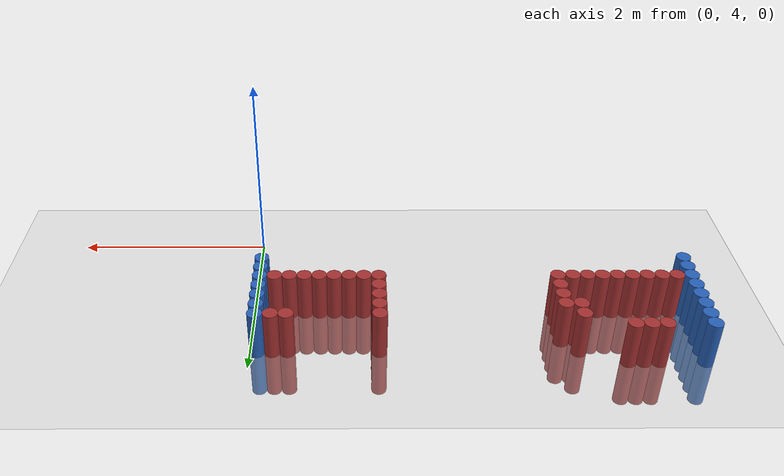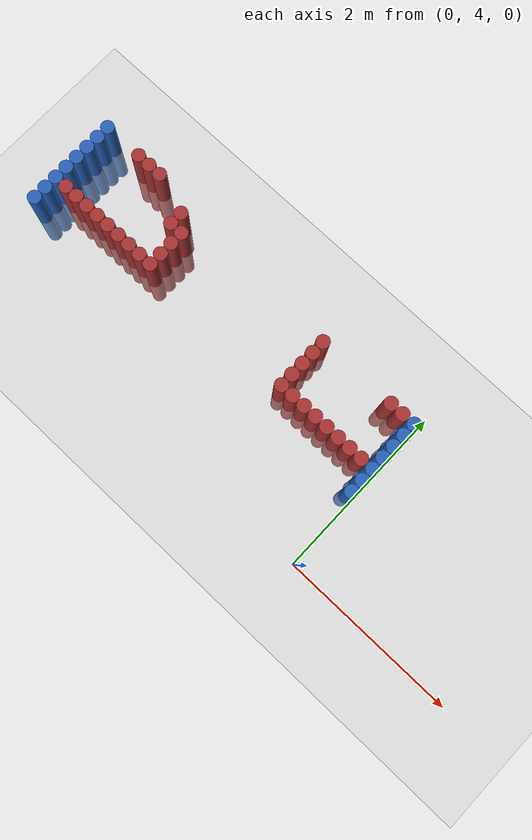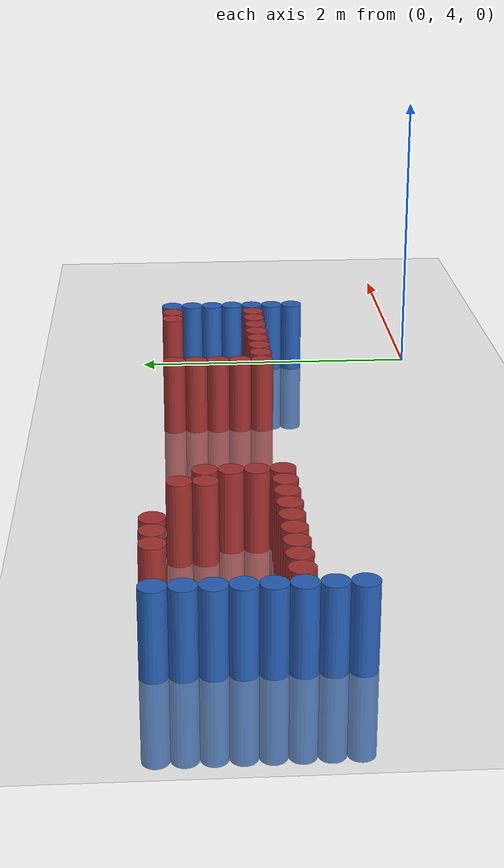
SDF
<sdf version="1.6">
 <world name="default">
  <model name="ground_plane">
   <static>1</static>
   <link name="link">
    <collision name="collision">
     <geometry><plane><normal>0 0 1</normal><size>100 100</size></plane></geometry>
     <surface><friction><ode><mu>100</mu><mu2>50</mu2></ode></friction></surface>
    </collision>
    <visual name="visual">
     <cast_shadows>0</cast_shadows>
     <geometry><plane><normal>0 0 1</normal><size>100 100</size></plane></geometry>
     <material>
      <script><uri>file://media/materials/scripts/gazebo.material</uri><name>Gazebo/Grey</name></script>
     </material>
    </visual>
   </link>
  </model>
  <model name="unit_cylinder_92">
   <static>1</static>
   <pose>-0.075000 4.875000 0.000000 0.000000 0.000000 0.000000</pose>
   <link name="link">
    <inertial>
     <mass>1</mass>
     <inertia><ixx>0.145833</ixx><ixy>0</ixy><ixz>0</ixz><iyy>0.145833</iyy><iyz>0</iyz><izz>0.125</izz></inertia>
    </inertial>
    <collision name="collision">
     <geometry><cylinder><radius>0.075000</radius><length>1</length></cylinder></geometry>
    </collision>
    <visual name="visual">
     <geometry><cylinder><radius>0.075000</radius><length>1</length></cylinder></geometry>
     <material>
      <ambient>0.152000 0.379000 0.720000 1</ambient>
      <diffuse>0.152000 0.379000 0.720000 1</diffuse>
     </material>
     <material>
      <script><name>Gazebo/Grey</name><uri>file://media/materials/scripts/gazebo.material</uri></script>
     </material>
    </visual>
   </link>
  </model>
  <model name="unit_cylinder_93">
   <static>1</static>
   <pose>-4.425000 4.875000 0.000000 0.000000 0.000000 0.000000</pose>
   <link name="link">
    <inertial>
     <mass>1</mass>
     <inertia><ixx>0.145833</ixx><ixy>0</ixy><ixz>0</ixz><iyy>0.145833</iyy><iyz>0</iyz><izz>0.125</izz></inertia>
    </inertial>
    <collision name="collision">
     <geometry><cylinder><radius>0.075000</radius><length>1</length></cylinder></geometry>
    </collision>
    <visual name="visual">
     <geometry><cylinder><radius>0.075000</radius><length>1</length></cylinder></geometry>
     <material>
      <ambient>0.152000 0.379000 0.720000 1</ambient>
      <diffuse>0.152000 0.379000 0.720000 1</diffuse>
     </material>
     <material>
      <script><name>Gazebo/Grey</name><uri>file://media/materials/scripts/gazebo.material</uri></script>
     </material>
    </visual>
   </link>
  </model>
  <model name="unit_cylinder_94">
   <static>1</static>
   <pose>-0.075000 5.025000 0.000000 0.000000 0.000000 0.000000</pose>
   <link name="link">
    <inertial>
     <mass>1</mass>
     <inertia><ixx>0.145833</ixx><ixy>0</ixy><ixz>0</ixz><iyy>0.145833</iyy><iyz>0</iyz><izz>0.125</izz></inertia>
    </inertial>
    <collision name="collision">
     <geometry><cylinder><radius>0.075000</radius><length>1</length></cylinder></geometry>
    </collision>
    <visual name="visual">
     <geometry><cylinder><radius>0.075000</radius><length>1</length></cylinder></geometry>
     <material>
      <ambient>0.152000 0.379000 0.720000 1</ambient>
      <diffuse>0.152000 0.379000 0.720000 1</diffuse>
     </material>
     <material>
      <script><name>Gazebo/Grey</name><uri>file://media/materials/scripts/gazebo.material</uri></script>
     </material>
    </visual>
   </link>
  </model>
  <model name="unit_cylinder_95">
   <static>1</static>
   <pose>-4.425000 5.025000 0.000000 0.000000 0.000000 0.000000</pose>
   <link name="link">
    <inertial>
     <mass>1</mass>
     <inertia><ixx>0.145833</ixx><ixy>0</ixy><ixz>0</ixz><iyy>0.145833</iyy><iyz>0</iyz><izz>0.125</izz></inertia>
    </inertial>
    <collision name="collision">
     <geometry><cylinder><radius>0.075000</radius><length>1</length></cylinder></geometry>
    </collision>
    <visual name="visual">
     <geometry><cylinder><radius>0.075000</radius><length>1</length></cylinder></geometry>
     <material>
      <ambient>0.152000 0.379000 0.720000 1</ambient>
      <diffuse>0.152000 0.379000 0.720000 1</diffuse>
     </material>
     <material>
      <script><name>Gazebo/Grey</name><uri>file://media/materials/scripts/gazebo.material</uri></script>
     </material>
    </visual>
   </link>
  </model>
  <model name="unit_cylinder_96">
   <static>1</static>
   <pose>-4.425000 5.175000 0.000000 0.000000 0.000000 0.000000</pose>
   <link name="link">
    <inertial>
     <mass>1</mass>
     <inertia><ixx>0.145833</ixx><ixy>0</ixy><ixz>0</ixz><iyy>0.145833</iyy><iyz>0</iyz><izz>0.125</izz></inertia>
    </inertial>
    <collision name="collision">
     <geometry><cylinder><radius>0.075000</radius><length>1</length></cylinder></geometry>
    </collision>
    <visual name="visual">
     <geometry><cylinder><radius>0.075000</radius><length>1</length></cylinder></geometry>
     <material>
      <ambient>0.152000 0.379000 0.720000 1</ambient>
      <diffuse>0.152000 0.379000 0.720000 1</diffuse>
     </material>
     <material>
      <script><name>Gazebo/Grey</name><uri>file://media/materials/scripts/gazebo.material</uri></script>
     </material>
    </visual>
   </link>
  </model>
  <model name="unit_cylinder_97">
   <static>1</static>
   <pose>-4.425000 5.325000 0.000000 0.000000 0.000000 0.000000</pose>
   <link name="link">
    <inertial>
     <mass>1</mass>
     <inertia><ixx>0.145833</ixx><ixy>0</ixy><ixz>0</ixz><iyy>0.145833</iyy><iyz>0</iyz><izz>0.125</izz></inertia>
    </inertial>
    <collision name="collision">
     <geometry><cylinder><radius>0.075000</radius><length>1</length></cylinder></geometry>
    </collision>
    <visual name="visual">
     <geometry><cylinder><radius>0.075000</radius><length>1</length></cylinder></geometry>
     <material>
      <ambient>0.152000 0.379000 0.720000 1</ambient>
      <diffuse>0.152000 0.379000 0.720000 1</diffuse>
     </material>
     <material>
      <script><name>Gazebo/Grey</name><uri>file://media/materials/scripts/gazebo.material</uri></script>
     </material>
    </visual>
   </link>
  </model>
  <model name="unit_cylinder_98">
   <static>1</static>
   <pose>-4.425000 5.475000 0.000000 0.000000 0.000000 0.000000</pose>
   <link name="link">
    <inertial>
     <mass>1</mass>
     <inertia><ixx>0.145833</ixx><ixy>0</ixy><ixz>0</ixz><iyy>0.145833</iyy><iyz>0</iyz><izz>0.125</izz></inertia>
    </inertial>
    <collision name="collision">
     <geometry><cylinder><radius>0.075000</radius><length>1</length></cylinder></geometry>
    </collision>
    <visual name="visual">
     <geometry><cylinder><radius>0.075000</radius><length>1</length></cylinder></geometry>
     <material>
      <ambient>0.152000 0.379000 0.720000 1</ambient>
      <diffuse>0.152000 0.379000 0.720000 1</diffuse>
     </material>
     <material>
      <script><name>Gazebo/Grey</name><uri>file://media/materials/scripts/gazebo.material</uri></script>
     </material>
    </visual>
   </link>
  </model>
  <model name="unit_cylinder_99">
   <static>1</static>
   <pose>-4.425000 5.625000 0.000000 0.000000 0.000000 0.000000</pose>
   <link name="link">
    <inertial>
     <mass>1</mass>
     <inertia><ixx>0.145833</ixx><ixy>0</ixy><ixz>0</ixz><iyy>0.145833</iyy><iyz>0</iyz><izz>0.125</izz></inertia>
    </inertial>
    <collision name="collision">
     <geometry><cylinder><radius>0.075000</radius><length>1</length></cylinder></geometry>
    </collision>
    <visual name="visual">
     <geometry><cylinder><radius>0.075000</radius><length>1</length></cylinder></geometry>
     <material>
      <ambient>0.152000 0.379000 0.720000 1</ambient>
      <diffuse>0.152000 0.379000 0.720000 1</diffuse>
     </material>
     <material>
      <script><name>Gazebo/Grey</name><uri>file://media/materials/scripts/gazebo.material</uri></script>
     </material>
    </visual>
   </link>
  </model>
  <model name="unit_cylinder_100">
   <static>1</static>
   <pose>-4.425000 5.775000 0.000000 0.000000 0.000000 0.000000</pose>
   <link name="link">
    <inertial>
     <mass>1</mass>
     <inertia><ixx>0.145833</ixx><ixy>0</ixy><ixz>0</ixz><iyy>0.145833</iyy><iyz>0</iyz><izz>0.125</izz></inertia>
    </inertial>
    <collision name="collision">
     <geometry><cylinder><radius>0.075000</radius><length>1</length></cylinder></geometry>
    </collision>
    <visual name="visual">
     <geometry><cylinder><radius>0.075000</radius><length>1</length></cylinder></geometry>
     <material>
      <ambient>0.152000 0.379000 0.720000 1</ambient>
      <diffuse>0.152000 0.379000 0.720000 1</diffuse>
     </material>
     <material>
      <script><name>Gazebo/Grey</name><uri>file://media/materials/scripts/gazebo.material</uri></script>
     </material>
    </visual>
   </link>
  </model>
  <model name="unit_cylinder_101">
   <static>1</static>
   <pose>-4.425000 5.925000 0.000000 0.000000 0.000000 0.000000</pose>
   <link name="link">
    <inertial>
     <mass>1</mass>
     <inertia><ixx>0.145833</ixx><ixy>0</ixy><ixz>0</ixz><iyy>0.145833</iyy><iyz>0</iyz><izz>0.125</izz></inertia>
    </inertial>
    <collision name="collision">
     <geometry><cylinder><radius>0.075000</radius><length>1</length></cylinder></geometry>
    </collision>
    <visual name="visual">
     <geometry><cylinder><radius>0.075000</radius><length>1</length></cylinder></geometry>
     <material>
      <ambient>0.152000 0.379000 0.720000 1</ambient>
      <diffuse>0.152000 0.379000 0.720000 1</diffuse>
     </material>
     <material>
      <script><name>Gazebo/Grey</name><uri>file://media/materials/scripts/gazebo.material</uri></script>
     </material>
    </visual>
   </link>
  </model>
  <model name="unit_cylinder_126">
   <static>1</static>
   <pose>-4.275000 5.175000 0.000000 0.000000 0.000000 0.000000</pose>
   <link name="link">
    <inertial>
     <mass>1</mass>
     <inertia><ixx>0.145833</ixx><ixy>0</ixy><ixz>0</ixz><iyy>0.145833</iyy><iyz>0</iyz><izz>0.125</izz></inertia>
    </inertial>
    <collision name="collision">
     <geometry><cylinder><radius>0.075000</radius><length>1</length></cylinder></geometry>
    </collision>
    <visual name="visual">
     <geometry><cylinder><radius>0.075000</radius><length>1</length></cylinder></geometry>
     <material>
      <ambient>0.648000 0.192000 0.192000 1</ambient>
      <diffuse>0.648000 0.192000 0.192000 1</diffuse>
     </material>
     <material>
      <script><name>Gazebo/Grey</name><uri>file://media/materials/scripts/gazebo.material</uri></script>
     </material>
    </visual>
   </link>
  </model>
  <model name="unit_cylinder_133">
   <static>1</static>
   <pose>-4.125000 5.175000 0.000000 0.000000 0.000000 0.000000</pose>
   <link name="link">
    <inertial>
     <mass>1</mass>
     <inertia><ixx>0.145833</ixx><ixy>0</ixy><ixz>0</ixz><iyy>0.145833</iyy><iyz>0</iyz><izz>0.125</izz></inertia>
    </inertial>
    <collision name="collision">
     <geometry><cylinder><radius>0.075000</radius><length>1</length></cylinder></geometry>
    </collision>
    <visual name="visual">
     <geometry><cylinder><radius>0.075000</radius><length>1</length></cylinder></geometry>
     <material>
      <ambient>0.648000 0.192000 0.192000 1</ambient>
      <diffuse>0.648000 0.192000 0.192000 1</diffuse>
     </material>
     <material>
      <script><name>Gazebo/Grey</name><uri>file://media/materials/scripts/gazebo.material</uri></script>
     </material>
    </visual>
   </link>
  </model>
  <model name="unit_cylinder_136">
   <static>1</static>
   <pose>-3.975000 5.175000 0.000000 0.000000 0.000000 0.000000</pose>
   <link name="link">
    <inertial>
     <mass>1</mass>
     <inertia><ixx>0.145833</ixx><ixy>0</ixy><ixz>0</ixz><iyy>0.145833</iyy><iyz>0</iyz><izz>0.125</izz></inertia>
    </inertial>
    <collision name="collision">
     <geometry><cylinder><radius>0.075000</radius><length>1</length></cylinder></geometry>
    </collision>
    <visual name="visual">
     <geometry><cylinder><radius>0.075000</radius><length>1</length></cylinder></geometry>
     <material>
      <ambient>0.648000 0.192000 0.192000 1</ambient>
      <diffuse>0.648000 0.192000 0.192000 1</diffuse>
     </material>
     <material>
      <script><name>Gazebo/Grey</name><uri>file://media/materials/scripts/gazebo.material</uri></script>
     </material>
    </visual>
   </link>
  </model>
  <model name="unit_cylinder_137">
   <static>1</static>
   <pose>-3.975000 5.925000 0.000000 0.000000 0.000000 0.000000</pose>
   <link name="link">
    <inertial>
     <mass>1</mass>
     <inertia><ixx>0.145833</ixx><ixy>0</ixy><ixz>0</ixz><iyy>0.145833</iyy><iyz>0</iyz><izz>0.125</izz></inertia>
    </inertial>
    <collision name="collision">
     <geometry><cylinder><radius>0.075000</radius><length>1</length></cylinder></geometry>
    </collision>
    <visual name="visual">
     <geometry><cylinder><radius>0.075000</radius><length>1</length></cylinder></geometry>
     <material>
      <ambient>0.648000 0.192000 0.192000 1</ambient>
      <diffuse>0.648000 0.192000 0.192000 1</diffuse>
     </material>
     <material>
      <script><name>Gazebo/Grey</name><uri>file://media/materials/scripts/gazebo.material</uri></script>
     </material>
    </visual>
   </link>
  </model>
  <model name="unit_cylinder_140">
   <static>1</static>
   <pose>-3.825000 5.175000 0.000000 0.000000 0.000000 0.000000</pose>
   <link name="link">
    <inertial>
     <mass>1</mass>
     <inertia><ixx>0.145833</ixx><ixy>0</ixy><ixz>0</ixz><iyy>0.145833</iyy><iyz>0</iyz><izz>0.125</izz></inertia>
    </inertial>
    <collision name="collision">
     <geometry><cylinder><radius>0.075000</radius><length>1</length></cylinder></geometry>
    </collision>
    <visual name="visual">
     <geometry><cylinder><radius>0.075000</radius><length>1</length></cylinder></geometry>
     <material>
      <ambient>0.648000 0.192000 0.192000 1</ambient>
      <diffuse>0.648000 0.192000 0.192000 1</diffuse>
     </material>
     <material>
      <script><name>Gazebo/Grey</name><uri>file://media/materials/scripts/gazebo.material</uri></script>
     </material>
    </visual>
   </link>
  </model>
  <model name="unit_cylinder_141">
   <static>1</static>
   <pose>-3.825000 5.925000 0.000000 0.000000 0.000000 0.000000</pose>
   <link name="link">
    <inertial>
     <mass>1</mass>
     <inertia><ixx>0.145833</ixx><ixy>0</ixy><ixz>0</ixz><iyy>0.145833</iyy><iyz>0</iyz><izz>0.125</izz></inertia>
    </inertial>
    <collision name="collision">
     <geometry><cylinder><radius>0.075000</radius><length>1</length></cylinder></geometry>
    </collision>
    <visual name="visual">
     <geometry><cylinder><radius>0.075000</radius><length>1</length></cylinder></geometry>
     <material>
      <ambient>0.648000 0.192000 0.192000 1</ambient>
      <diffuse>0.648000 0.192000 0.192000 1</diffuse>
     </material>
     <material>
      <script><name>Gazebo/Grey</name><uri>file://media/materials/scripts/gazebo.material</uri></script>
     </material>
    </visual>
   </link>
  </model>
  <model name="unit_cylinder_146">
   <static>1</static>
   <pose>-3.675000 5.175000 0.000000 0.000000 0.000000 0.000000</pose>
   <link name="link">
    <inertial>
     <mass>1</mass>
     <inertia><ixx>0.145833</ixx><ixy>0</ixy><ixz>0</ixz><iyy>0.145833</iyy><iyz>0</iyz><izz>0.125</izz></inertia>
    </inertial>
    <collision name="collision">
     <geometry><cylinder><radius>0.075000</radius><length>1</length></cylinder></geometry>
    </collision>
    <visual name="visual">
     <geometry><cylinder><radius>0.075000</radius><length>1</length></cylinder></geometry>
     <material>
      <ambient>0.648000 0.192000 0.192000 1</ambient>
      <diffuse>0.648000 0.192000 0.192000 1</diffuse>
     </material>
     <material>
      <script><name>Gazebo/Grey</name><uri>file://media/materials/scripts/gazebo.material</uri></script>
     </material>
    </visual>
   </link>
  </model>
  <model name="unit_cylinder_147">
   <static>1</static>
   <pose>-3.675000 5.925000 0.000000 0.000000 0.000000 0.000000</pose>
   <link name="link">
    <inertial>
     <mass>1</mass>
     <inertia><ixx>0.145833</ixx><ixy>0</ixy><ixz>0</ixz><iyy>0.145833</iyy><iyz>0</iyz><izz>0.125</izz></inertia>
    </inertial>
    <collision name="collision">
     <geometry><cylinder><radius>0.075000</radius><length>1</length></cylinder></geometry>
    </collision>
    <visual name="visual">
     <geometry><cylinder><radius>0.075000</radius><length>1</length></cylinder></geometry>
     <material>
      <ambient>0.648000 0.192000 0.192000 1</ambient>
      <diffuse>0.648000 0.192000 0.192000 1</diffuse>
     </material>
     <material>
      <script><name>Gazebo/Grey</name><uri>file://media/materials/scripts/gazebo.material</uri></script>
     </material>
    </visual>
   </link>
  </model>
  <model name="unit_cylinder_150">
   <static>1</static>
   <pose>-3.525000 5.175000 0.000000 0.000000 0.000000 0.000000</pose>
   <link name="link">
    <inertial>
     <mass>1</mass>
     <inertia><ixx>0.145833</ixx><ixy>0</ixy><ixz>0</ixz><iyy>0.145833</iyy><iyz>0</iyz><izz>0.125</izz></inertia>
    </inertial>
    <collision name="collision">
     <geometry><cylinder><radius>0.075000</radius><length>1</length></cylinder></geometry>
    </collision>
    <visual name="visual">
     <geometry><cylinder><radius>0.075000</radius><length>1</length></cylinder></geometry>
     <material>
      <ambient>0.648000 0.192000 0.192000 1</ambient>
      <diffuse>0.648000 0.192000 0.192000 1</diffuse>
     </material>
     <material>
      <script><name>Gazebo/Grey</name><uri>file://media/materials/scripts/gazebo.material</uri></script>
     </material>
    </visual>
   </link>
  </model>
  <model name="unit_cylinder_157">
   <static>1</static>
   <pose>-3.375000 5.175000 0.000000 0.000000 0.000000 0.000000</pose>
   <link name="link">
    <inertial>
     <mass>1</mass>
     <inertia><ixx>0.145833</ixx><ixy>0</ixy><ixz>0</ixz><iyy>0.145833</iyy><iyz>0</iyz><izz>0.125</izz></inertia>
    </inertial>
    <collision name="collision">
     <geometry><cylinder><radius>0.075000</radius><length>1</length></cylinder></geometry>
    </collision>
    <visual name="visual">
     <geometry><cylinder><radius>0.075000</radius><length>1</length></cylinder></geometry>
     <material>
      <ambient>0.648000 0.192000 0.192000 1</ambient>
      <diffuse>0.648000 0.192000 0.192000 1</diffuse>
     </material>
     <material>
      <script><name>Gazebo/Grey</name><uri>file://media/materials/scripts/gazebo.material</uri></script>
     </material>
    </visual>
   </link>
  </model>
  <model name="unit_cylinder_164">
   <static>1</static>
   <pose>-3.225000 5.175000 0.000000 0.000000 0.000000 0.000000</pose>
   <link name="link">
    <inertial>
     <mass>1</mass>
     <inertia><ixx>0.145833</ixx><ixy>0</ixy><ixz>0</ixz><iyy>0.145833</iyy><iyz>0</iyz><izz>0.125</izz></inertia>
    </inertial>
    <collision name="collision">
     <geometry><cylinder><radius>0.075000</radius><length>1</length></cylinder></geometry>
    </collision>
    <visual name="visual">
     <geometry><cylinder><radius>0.075000</radius><length>1</length></cylinder></geometry>
     <material>
      <ambient>0.648000 0.192000 0.192000 1</ambient>
      <diffuse>0.648000 0.192000 0.192000 1</diffuse>
     </material>
     <material>
      <script><name>Gazebo/Grey</name><uri>file://media/materials/scripts/gazebo.material</uri></script>
     </material>
    </visual>
   </link>
  </model>
  <model name="unit_cylinder_165">
   <static>1</static>
   <pose>-3.225000 5.625000 0.000000 0.000000 0.000000 0.000000</pose>
   <link name="link">
    <inertial>
     <mass>1</mass>
     <inertia><ixx>0.145833</ixx><ixy>0</ixy><ixz>0</ixz><iyy>0.145833</iyy><iyz>0</iyz><izz>0.125</izz></inertia>
    </inertial>
    <collision name="collision">
     <geometry><cylinder><radius>0.075000</radius><length>1</length></cylinder></geometry>
    </collision>
    <visual name="visual">
     <geometry><cylinder><radius>0.075000</radius><length>1</length></cylinder></geometry>
     <material>
      <ambient>0.648000 0.192000 0.192000 1</ambient>
      <diffuse>0.648000 0.192000 0.192000 1</diffuse>
     </material>
     <material>
      <script><name>Gazebo/Grey</name><uri>file://media/materials/scripts/gazebo.material</uri></script>
     </material>
    </visual>
   </link>
  </model>
  <model name="unit_cylinder_166">
   <static>1</static>
   <pose>-3.225000 5.775000 0.000000 0.000000 0.000000 0.000000</pose>
   <link name="link">
    <inertial>
     <mass>1</mass>
     <inertia><ixx>0.145833</ixx><ixy>0</ixy><ixz>0</ixz><iyy>0.145833</iyy><iyz>0</iyz><izz>0.125</izz></inertia>
    </inertial>
    <collision name="collision">
     <geometry><cylinder><radius>0.075000</radius><length>1</length></cylinder></geometry>
    </collision>
    <visual name="visual">
     <geometry><cylinder><radius>0.075000</radius><length>1</length></cylinder></geometry>
     <material>
      <ambient>0.648000 0.192000 0.192000 1</ambient>
      <diffuse>0.648000 0.192000 0.192000 1</diffuse>
     </material>
     <material>
      <script><name>Gazebo/Grey</name><uri>file://media/materials/scripts/gazebo.material</uri></script>
     </material>
    </visual>
   </link>
  </model>
  <model name="unit_cylinder_169">
   <static>1</static>
   <pose>-3.075000 5.175000 0.000000 0.000000 0.000000 0.000000</pose>
   <link name="link">
    <inertial>
     <mass>1</mass>
     <inertia><ixx>0.145833</ixx><ixy>0</ixy><ixz>0</ixz><iyy>0.145833</iyy><iyz>0</iyz><izz>0.125</izz></inertia>
    </inertial>
    <collision name="collision">
     <geometry><cylinder><radius>0.075000</radius><length>1</length></cylinder></geometry>
    </collision>
    <visual name="visual">
     <geometry><cylinder><radius>0.075000</radius><length>1</length></cylinder></geometry>
     <material>
      <ambient>0.648000 0.192000 0.192000 1</ambient>
      <diffuse>0.648000 0.192000 0.192000 1</diffuse>
     </material>
     <material>
      <script><name>Gazebo/Grey</name><uri>file://media/materials/scripts/gazebo.material</uri></script>
     </material>
    </visual>
   </link>
  </model>
  <model name="unit_cylinder_170">
   <static>1</static>
   <pose>-3.075000 5.325000 0.000000 0.000000 0.000000 0.000000</pose>
   <link name="link">
    <inertial>
     <mass>1</mass>
     <inertia><ixx>0.145833</ixx><ixy>0</ixy><ixz>0</ixz><iyy>0.145833</iyy><iyz>0</iyz><izz>0.125</izz></inertia>
    </inertial>
    <collision name="collision">
     <geometry><cylinder><radius>0.075000</radius><length>1</length></cylinder></geometry>
    </collision>
    <visual name="visual">
     <geometry><cylinder><radius>0.075000</radius><length>1</length></cylinder></geometry>
     <material>
      <ambient>0.648000 0.192000 0.192000 1</ambient>
      <diffuse>0.648000 0.192000 0.192000 1</diffuse>
     </material>
     <material>
      <script><name>Gazebo/Grey</name><uri>file://media/materials/scripts/gazebo.material</uri></script>
     </material>
    </visual>
   </link>
  </model>
  <model name="unit_cylinder_171">
   <static>1</static>
   <pose>-3.075000 5.475000 0.000000 0.000000 0.000000 0.000000</pose>
   <link name="link">
    <inertial>
     <mass>1</mass>
     <inertia><ixx>0.145833</ixx><ixy>0</ixy><ixz>0</ixz><iyy>0.145833</iyy><iyz>0</iyz><izz>0.125</izz></inertia>
    </inertial>
    <collision name="collision">
     <geometry><cylinder><radius>0.075000</radius><length>1</length></cylinder></geometry>
    </collision>
    <visual name="visual">
     <geometry><cylinder><radius>0.075000</radius><length>1</length></cylinder></geometry>
     <material>
      <ambient>0.648000 0.192000 0.192000 1</ambient>
      <diffuse>0.648000 0.192000 0.192000 1</diffuse>
     </material>
     <material>
      <script><name>Gazebo/Grey</name><uri>file://media/materials/scripts/gazebo.material</uri></script>
     </material>
    </visual>
   </link>
  </model>
  <model name="unit_cylinder_172">
   <static>1</static>
   <pose>-3.075000 5.625000 0.000000 0.000000 0.000000 0.000000</pose>
   <link name="link">
    <inertial>
     <mass>1</mass>
     <inertia><ixx>0.145833</ixx><ixy>0</ixy><ixz>0</ixz><iyy>0.145833</iyy><iyz>0</iyz><izz>0.125</izz></inertia>
    </inertial>
    <collision name="collision">
     <geometry><cylinder><radius>0.075000</radius><length>1</length></cylinder></geometry>
    </collision>
    <visual name="visual">
     <geometry><cylinder><radius>0.075000</radius><length>1</length></cylinder></geometry>
     <material>
      <ambient>0.648000 0.192000 0.192000 1</ambient>
      <diffuse>0.648000 0.192000 0.192000 1</diffuse>
     </material>
     <material>
      <script><name>Gazebo/Grey</name><uri>file://media/materials/scripts/gazebo.material</uri></script>
     </material>
    </visual>
   </link>
  </model>
  <model name="unit_cylinder_207">
   <static>1</static>
   <pose>-1.275000 5.175000 0.000000 0.000000 0.000000 0.000000</pose>
   <link name="link">
    <inertial>
     <mass>1</mass>
     <inertia><ixx>0.145833</ixx><ixy>0</ixy><ixz>0</ixz><iyy>0.145833</iyy><iyz>0</iyz><izz>0.125</izz></inertia>
    </inertial>
    <collision name="collision">
     <geometry><cylinder><radius>0.075000</radius><length>1</length></cylinder></geometry>
    </collision>
    <visual name="visual">
     <geometry><cylinder><radius>0.075000</radius><length>1</length></cylinder></geometry>
     <material>
      <ambient>0.648000 0.192000 0.192000 1</ambient>
      <diffuse>0.648000 0.192000 0.192000 1</diffuse>
     </material>
     <material>
      <script><name>Gazebo/Grey</name><uri>file://media/materials/scripts/gazebo.material</uri></script>
     </material>
    </visual>
   </link>
  </model>
  <model name="unit_cylinder_208">
   <static>1</static>
   <pose>-1.275000 5.325000 0.000000 0.000000 0.000000 0.000000</pose>
   <link name="link">
    <inertial>
     <mass>1</mass>
     <inertia><ixx>0.145833</ixx><ixy>0</ixy><ixz>0</ixz><iyy>0.145833</iyy><iyz>0</iyz><izz>0.125</izz></inertia>
    </inertial>
    <collision name="collision">
     <geometry><cylinder><radius>0.075000</radius><length>1</length></cylinder></geometry>
    </collision>
    <visual name="visual">
     <geometry><cylinder><radius>0.075000</radius><length>1</length></cylinder></geometry>
     <material>
      <ambient>0.648000 0.192000 0.192000 1</ambient>
      <diffuse>0.648000 0.192000 0.192000 1</diffuse>
     </material>
     <material>
      <script><name>Gazebo/Grey</name><uri>file://media/materials/scripts/gazebo.material</uri></script>
     </material>
    </visual>
   </link>
  </model>
  <model name="unit_cylinder_209">
   <static>1</static>
   <pose>-1.275000 5.475000 0.000000 0.000000 0.000000 0.000000</pose>
   <link name="link">
    <inertial>
     <mass>1</mass>
     <inertia><ixx>0.145833</ixx><ixy>0</ixy><ixz>0</ixz><iyy>0.145833</iyy><iyz>0</iyz><izz>0.125</izz></inertia>
    </inertial>
    <collision name="collision">
     <geometry><cylinder><radius>0.075000</radius><length>1</length></cylinder></geometry>
    </collision>
    <visual name="visual">
     <geometry><cylinder><radius>0.075000</radius><length>1</length></cylinder></geometry>
     <material>
      <ambient>0.648000 0.192000 0.192000 1</ambient>
      <diffuse>0.648000 0.192000 0.192000 1</diffuse>
     </material>
     <material>
      <script><name>Gazebo/Grey</name><uri>file://media/materials/scripts/gazebo.material</uri></script>
     </material>
    </visual>
   </link>
  </model>
  <model name="unit_cylinder_210">
   <static>1</static>
   <pose>-1.275000 5.625000 0.000000 0.000000 0.000000 0.000000</pose>
   <link name="link">
    <inertial>
     <mass>1</mass>
     <inertia><ixx>0.145833</ixx><ixy>0</ixy><ixz>0</ixz><iyy>0.145833</iyy><iyz>0</iyz><izz>0.125</izz></inertia>
    </inertial>
    <collision name="collision">
     <geometry><cylinder><radius>0.075000</radius><length>1</length></cylinder></geometry>
    </collision>
    <visual name="visual">
     <geometry><cylinder><radius>0.075000</radius><length>1</length></cylinder></geometry>
     <material>
      <ambient>0.648000 0.192000 0.192000 1</ambient>
      <diffuse>0.648000 0.192000 0.192000 1</diffuse>
     </material>
     <material>
      <script><name>Gazebo/Grey</name><uri>file://media/materials/scripts/gazebo.material</uri></script>
     </material>
    </visual>
   </link>
  </model>
  <model name="unit_cylinder_211">
   <static>1</static>
   <pose>-1.275000 5.775000 0.000000 0.000000 0.000000 0.000000</pose>
   <link name="link">
    <inertial>
     <mass>1</mass>
     <inertia><ixx>0.145833</ixx><ixy>0</ixy><ixz>0</ixz><iyy>0.145833</iyy><iyz>0</iyz><izz>0.125</izz></inertia>
    </inertial>
    <collision name="collision">
     <geometry><cylinder><radius>0.075000</radius><length>1</length></cylinder></geometry>
    </collision>
    <visual name="visual">
     <geometry><cylinder><radius>0.075000</radius><length>1</length></cylinder></geometry>
     <material>
      <ambient>0.648000 0.192000 0.192000 1</ambient>
      <diffuse>0.648000 0.192000 0.192000 1</diffuse>
     </material>
     <material>
      <script><name>Gazebo/Grey</name><uri>file://media/materials/scripts/gazebo.material</uri></script>
     </material>
    </visual>
   </link>
  </model>
  <model name="unit_cylinder_216">
   <static>1</static>
   <pose>-1.125000 5.175000 0.000000 0.000000 0.000000 0.000000</pose>
   <link name="link">
    <inertial>
     <mass>1</mass>
     <inertia><ixx>0.145833</ixx><ixy>0</ixy><ixz>0</ixz><iyy>0.145833</iyy><iyz>0</iyz><izz>0.125</izz></inertia>
    </inertial>
    <collision name="collision">
     <geometry><cylinder><radius>0.075000</radius><length>1</length></cylinder></geometry>
    </collision>
    <visual name="visual">
     <geometry><cylinder><radius>0.075000</radius><length>1</length></cylinder></geometry>
     <material>
      <ambient>0.648000 0.192000 0.192000 1</ambient>
      <diffuse>0.648000 0.192000 0.192000 1</diffuse>
     </material>
     <material>
      <script><name>Gazebo/Grey</name><uri>file://media/materials/scripts/gazebo.material</uri></script>
     </material>
    </visual>
   </link>
  </model>
  <model name="unit_cylinder_218">
   <static>1</static>
   <pose>-0.975000 5.175000 0.000000 0.000000 0.000000 0.000000</pose>
   <link name="link">
    <inertial>
     <mass>1</mass>
     <inertia><ixx>0.145833</ixx><ixy>0</ixy><ixz>0</ixz><iyy>0.145833</iyy><iyz>0</iyz><izz>0.125</izz></inertia>
    </inertial>
    <collision name="collision">
     <geometry><cylinder><radius>0.075000</radius><length>1</length></cylinder></geometry>
    </collision>
    <visual name="visual">
     <geometry><cylinder><radius>0.075000</radius><length>1</length></cylinder></geometry>
     <material>
      <ambient>0.648000 0.192000 0.192000 1</ambient>
      <diffuse>0.648000 0.192000 0.192000 1</diffuse>
     </material>
     <material>
      <script><name>Gazebo/Grey</name><uri>file://media/materials/scripts/gazebo.material</uri></script>
     </material>
    </visual>
   </link>
  </model>
  <model name="unit_cylinder_221">
   <static>1</static>
   <pose>-0.825000 5.175000 0.000000 0.000000 0.000000 0.000000</pose>
   <link name="link">
    <inertial>
     <mass>1</mass>
     <inertia><ixx>0.145833</ixx><ixy>0</ixy><ixz>0</ixz><iyy>0.145833</iyy><iyz>0</iyz><izz>0.125</izz></inertia>
    </inertial>
    <collision name="collision">
     <geometry><cylinder><radius>0.075000</radius><length>1</length></cylinder></geometry>
    </collision>
    <visual name="visual">
     <geometry><cylinder><radius>0.075000</radius><length>1</length></cylinder></geometry>
     <material>
      <ambient>0.648000 0.192000 0.192000 1</ambient>
      <diffuse>0.648000 0.192000 0.192000 1</diffuse>
     </material>
     <material>
      <script><name>Gazebo/Grey</name><uri>file://media/materials/scripts/gazebo.material</uri></script>
     </material>
    </visual>
   </link>
  </model>
  <model name="unit_cylinder_228">
   <static>1</static>
   <pose>-0.675000 5.175000 0.000000 0.000000 0.000000 0.000000</pose>
   <link name="link">
    <inertial>
     <mass>1</mass>
     <inertia><ixx>0.145833</ixx><ixy>0</ixy><ixz>0</ixz><iyy>0.145833</iyy><iyz>0</iyz><izz>0.125</izz></inertia>
    </inertial>
    <collision name="collision">
     <geometry><cylinder><radius>0.075000</radius><length>1</length></cylinder></geometry>
    </collision>
    <visual name="visual">
     <geometry><cylinder><radius>0.075000</radius><length>1</length></cylinder></geometry>
     <material>
      <ambient>0.648000 0.192000 0.192000 1</ambient>
      <diffuse>0.648000 0.192000 0.192000 1</diffuse>
     </material>
     <material>
      <script><name>Gazebo/Grey</name><uri>file://media/materials/scripts/gazebo.material</uri></script>
     </material>
    </visual>
   </link>
  </model>
  <model name="unit_cylinder_233">
   <static>1</static>
   <pose>-0.525000 5.175000 0.000000 0.000000 0.000000 0.000000</pose>
   <link name="link">
    <inertial>
     <mass>1</mass>
     <inertia><ixx>0.145833</ixx><ixy>0</ixy><ixz>0</ixz><iyy>0.145833</iyy><iyz>0</iyz><izz>0.125</izz></inertia>
    </inertial>
    <collision name="collision">
     <geometry><cylinder><radius>0.075000</radius><length>1</length></cylinder></geometry>
    </collision>
    <visual name="visual">
     <geometry><cylinder><radius>0.075000</radius><length>1</length></cylinder></geometry>
     <material>
      <ambient>0.648000 0.192000 0.192000 1</ambient>
      <diffuse>0.648000 0.192000 0.192000 1</diffuse>
     </material>
     <material>
      <script><name>Gazebo/Grey</name><uri>file://media/materials/scripts/gazebo.material</uri></script>
     </material>
    </visual>
   </link>
  </model>
  <model name="unit_cylinder_238">
   <static>1</static>
   <pose>-0.375000 5.175000 0.000000 0.000000 0.000000 0.000000</pose>
   <link name="link">
    <inertial>
     <mass>1</mass>
     <inertia><ixx>0.145833</ixx><ixy>0</ixy><ixz>0</ixz><iyy>0.145833</iyy><iyz>0</iyz><izz>0.125</izz></inertia>
    </inertial>
    <collision name="collision">
     <geometry><cylinder><radius>0.075000</radius><length>1</length></cylinder></geometry>
    </collision>
    <visual name="visual">
     <geometry><cylinder><radius>0.075000</radius><length>1</length></cylinder></geometry>
     <material>
      <ambient>0.648000 0.192000 0.192000 1</ambient>
      <diffuse>0.648000 0.192000 0.192000 1</diffuse>
     </material>
     <material>
      <script><name>Gazebo/Grey</name><uri>file://media/materials/scripts/gazebo.material</uri></script>
     </material>
    </visual>
   </link>
  </model>
  <model name="unit_cylinder_239">
   <static>1</static>
   <pose>-0.375000 5.775000 0.000000 0.000000 0.000000 0.000000</pose>
   <link name="link">
    <inertial>
     <mass>1</mass>
     <inertia><ixx>0.145833</ixx><ixy>0</ixy><ixz>0</ixz><iyy>0.145833</iyy><iyz>0</iyz><izz>0.125</izz></inertia>
    </inertial>
    <collision name="collision">
     <geometry><cylinder><radius>0.075000</radius><length>1</length></cylinder></geometry>
    </collision>
    <visual name="visual">
     <geometry><cylinder><radius>0.075000</radius><length>1</length></cylinder></geometry>
     <material>
      <ambient>0.648000 0.192000 0.192000 1</ambient>
      <diffuse>0.648000 0.192000 0.192000 1</diffuse>
     </material>
     <material>
      <script><name>Gazebo/Grey</name><uri>file://media/materials/scripts/gazebo.material</uri></script>
     </material>
    </visual>
   </link>
  </model>
  <model name="unit_cylinder_244">
   <static>1</static>
   <pose>-0.225000 5.175000 0.000000 0.000000 0.000000 0.000000</pose>
   <link name="link">
    <inertial>
     <mass>1</mass>
     <inertia><ixx>0.145833</ixx><ixy>0</ixy><ixz>0</ixz><iyy>0.145833</iyy><iyz>0</iyz><izz>0.125</izz></inertia>
    </inertial>
    <collision name="collision">
     <geometry><cylinder><radius>0.075000</radius><length>1</length></cylinder></geometry>
    </collision>
    <visual name="visual">
     <geometry><cylinder><radius>0.075000</radius><length>1</length></cylinder></geometry>
     <material>
      <ambient>0.648000 0.192000 0.192000 1</ambient>
      <diffuse>0.648000 0.192000 0.192000 1</diffuse>
     </material>
     <material>
      <script><name>Gazebo/Grey</name><uri>file://media/materials/scripts/gazebo.material</uri></script>
     </material>
    </visual>
   </link>
  </model>
  <model name="unit_cylinder_245">
   <static>1</static>
   <pose>-0.225000 5.775000 0.000000 0.000000 0.000000 0.000000</pose>
   <link name="link">
    <inertial>
     <mass>1</mass>
     <inertia><ixx>0.145833</ixx><ixy>0</ixy><ixz>0</ixz><iyy>0.145833</iyy><iyz>0</iyz><izz>0.125</izz></inertia>
    </inertial>
    <collision name="collision">
     <geometry><cylinder><radius>0.075000</radius><length>1</length></cylinder></geometry>
    </collision>
    <visual name="visual">
     <geometry><cylinder><radius>0.075000</radius><length>1</length></cylinder></geometry>
     <material>
      <ambient>0.648000 0.192000 0.192000 1</ambient>
      <diffuse>0.648000 0.192000 0.192000 1</diffuse>
     </material>
     <material>
      <script><name>Gazebo/Grey</name><uri>file://media/materials/scripts/gazebo.material</uri></script>
     </material>
    </visual>
   </link>
  </model>
  <model name="unit_cylinder_246">
   <static>1</static>
   <pose>-0.075000 5.175000 0.000000 0.000000 0.000000 0.000000</pose>
   <link name="link">
    <inertial>
     <mass>1</mass>
     <inertia><ixx>0.145833</ixx><ixy>0</ixy><ixz>0</ixz><iyy>0.145833</iyy><iyz>0</iyz><izz>0.125</izz></inertia>
    </inertial>
    <collision name="collision">
     <geometry><cylinder><radius>0.075000</radius><length>1</length></cylinder></geometry>
    </collision>
    <visual name="visual">
     <geometry><cylinder><radius>0.075000</radius><length>1</length></cylinder></geometry>
     <material>
      <ambient>0.152000 0.379000 0.720000 1</ambient>
      <diffuse>0.152000 0.379000 0.720000 1</diffuse>
     </material>
     <material>
      <script><name>Gazebo/Grey</name><uri>file://media/materials/scripts/gazebo.material</uri></script>
     </material>
    </visual>
   </link>
  </model>
  <model name="unit_cylinder_247">
   <static>1</static>
   <pose>-0.075000 5.325000 0.000000 0.000000 0.000000 0.000000</pose>
   <link name="link">
    <inertial>
     <mass>1</mass>
     <inertia><ixx>0.145833</ixx><ixy>0</ixy><ixz>0</ixz><iyy>0.145833</iyy><iyz>0</iyz><izz>0.125</izz></inertia>
    </inertial>
    <collision name="collision">
     <geometry><cylinder><radius>0.075000</radius><length>1</length></cylinder></geometry>
    </collision>
    <visual name="visual">
     <geometry><cylinder><radius>0.075000</radius><length>1</length></cylinder></geometry>
     <material>
      <ambient>0.152000 0.379000 0.720000 1</ambient>
      <diffuse>0.152000 0.379000 0.720000 1</diffuse>
     </material>
     <material>
      <script><name>Gazebo/Grey</name><uri>file://media/materials/scripts/gazebo.material</uri></script>
     </material>
    </visual>
   </link>
  </model>
  <model name="unit_cylinder_248">
   <static>1</static>
   <pose>-0.075000 5.475000 0.000000 0.000000 0.000000 0.000000</pose>
   <link name="link">
    <inertial>
     <mass>1</mass>
     <inertia><ixx>0.145833</ixx><ixy>0</ixy><ixz>0</ixz><iyy>0.145833</iyy><iyz>0</iyz><izz>0.125</izz></inertia>
    </inertial>
    <collision name="collision">
     <geometry><cylinder><radius>0.075000</radius><length>1</length></cylinder></geometry>
    </collision>
    <visual name="visual">
     <geometry><cylinder><radius>0.075000</radius><length>1</length></cylinder></geometry>
     <material>
      <ambient>0.152000 0.379000 0.720000 1</ambient>
      <diffuse>0.152000 0.379000 0.720000 1</diffuse>
     </material>
     <material>
      <script><name>Gazebo/Grey</name><uri>file://media/materials/scripts/gazebo.material</uri></script>
     </material>
    </visual>
   </link>
  </model>
  <model name="unit_cylinder_249">
   <static>1</static>
   <pose>-0.075000 5.625000 0.000000 0.000000 0.000000 0.000000</pose>
   <link name="link">
    <inertial>
     <mass>1</mass>
     <inertia><ixx>0.145833</ixx><ixy>0</ixy><ixz>0</ixz><iyy>0.145833</iyy><iyz>0</iyz><izz>0.125</izz></inertia>
    </inertial>
    <collision name="collision">
     <geometry><cylinder><radius>0.075000</radius><length>1</length></cylinder></geometry>
    </collision>
    <visual name="visual">
     <geometry><cylinder><radius>0.075000</radius><length>1</length></cylinder></geometry>
     <material>
      <ambient>0.152000 0.379000 0.720000 1</ambient>
      <diffuse>0.152000 0.379000 0.720000 1</diffuse>
     </material>
     <material>
      <script><name>Gazebo/Grey</name><uri>file://media/materials/scripts/gazebo.material</uri></script>
     </material>
    </visual>
   </link>
  </model>
  <model name="unit_cylinder_250">
   <static>1</static>
   <pose>-0.075000 5.775000 0.000000 0.000000 0.000000 0.000000</pose>
   <link name="link">
    <inertial>
     <mass>1</mass>
     <inertia><ixx>0.145833</ixx><ixy>0</ixy><ixz>0</ixz><iyy>0.145833</iyy><iyz>0</iyz><izz>0.125</izz></inertia>
    </inertial>
    <collision name="collision">
     <geometry><cylinder><radius>0.075000</radius><length>1</length></cylinder></geometry>
    </collision>
    <visual name="visual">
     <geometry><cylinder><radius>0.075000</radius><length>1</length></cylinder></geometry>
     <material>
      <ambient>0.152000 0.379000 0.720000 1</ambient>
      <diffuse>0.152000 0.379000 0.720000 1</diffuse>
     </material>
     <material>
      <script><name>Gazebo/Grey</name><uri>file://media/materials/scripts/gazebo.material</uri></script>
     </material>
    </visual>
   </link>
  </model>
 </world>
</sdf>
